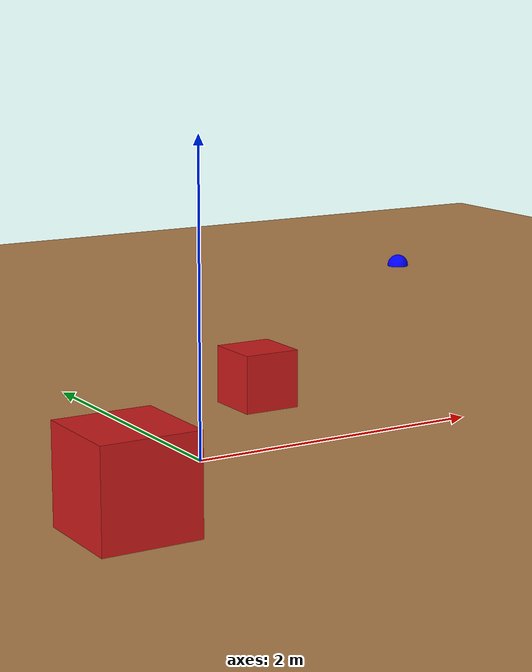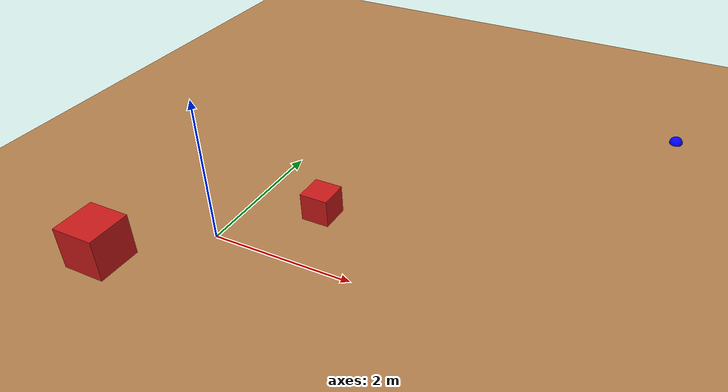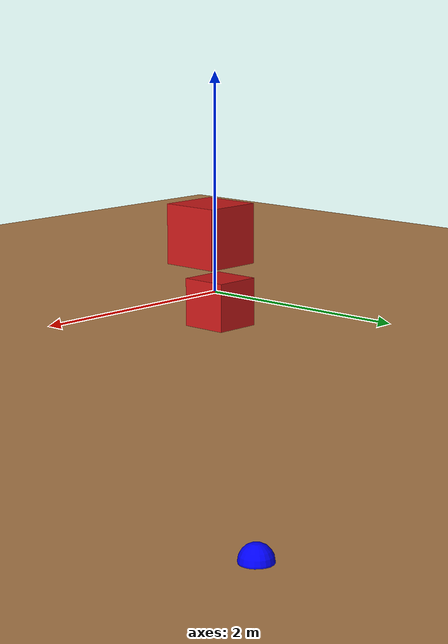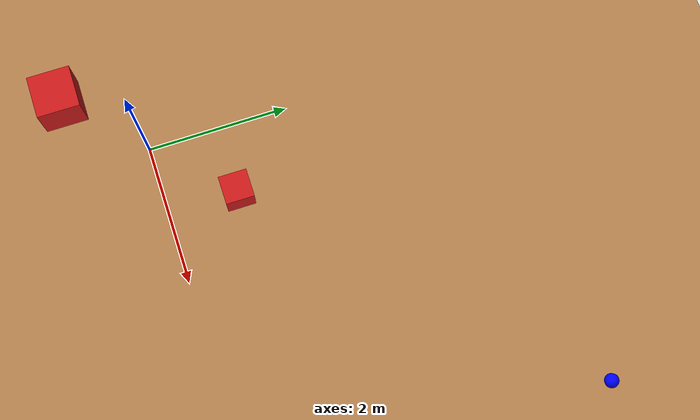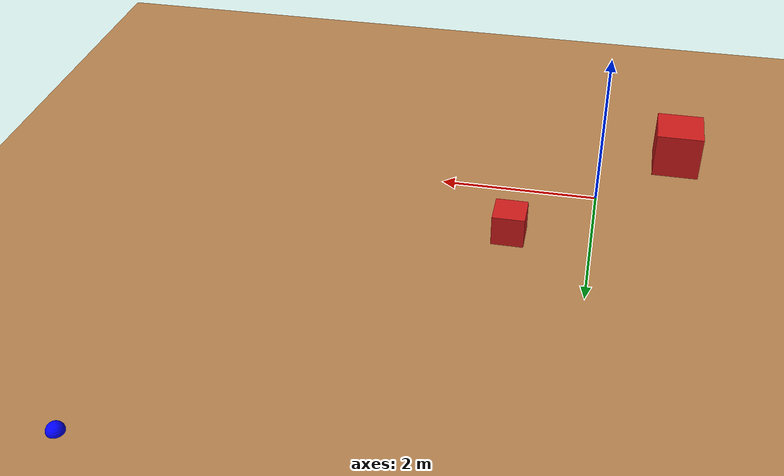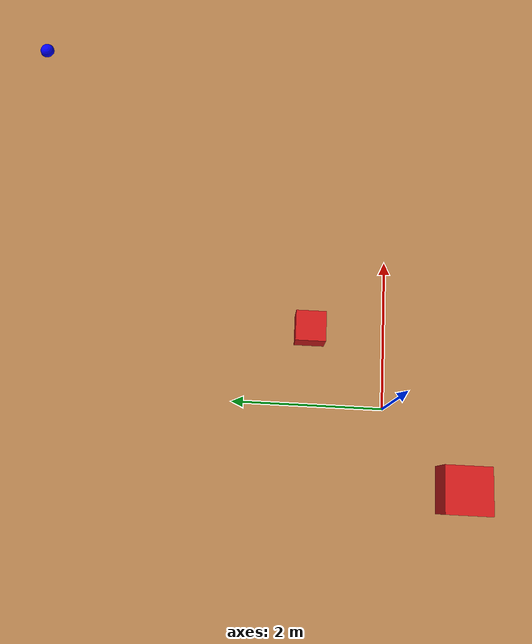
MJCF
<mujoco model="empty_arena">
  <asset>
    <texture builtin="gradient" height="256" rgb1=".9 .9 1." rgb2=".2 .3 .4" type="skybox" width="256"/>
    <texture file="../textures/light-wood.png" type="2d" name="texplane"/>
    <material name="floorplane" reflectance="0.01" shininess="0.0" specular="0.0" texrepeat="2 2" texture="texplane" texuniform="true"/>
    <material name="obstacle_material" rgba="0.8 0.1 0.1 1"/>
  </asset>
  <worldbody>
    <!-- Floor -->
    <geom condim="3" material="floorplane" name="floor" pos="0 0 0" size="10 10 .125" type="plane"/>

    <!-- Obstacle -->
    <body name="obstacle1" pos="1 1 0">
      <geom name="obstacle1_geom" type="box" size="0.2 0.2 0.2" material="obstacle_material" pos="0 0 0.2"/>
    </body>
    <body name="obstacle2" pos="-1 -1 0">
      <geom name="obstacle2_geom" type="box" size="0.3 0.3 0.3" material="obstacle_material" pos="0 0 0.3"/>
    </body>

    <!-- Target Point -->
    <body name="target" pos="5 5 0">
      <geom name="target_geom" type="sphere" size="0.1 0.1 0.1" material="obstacle_material" pos="0 0 0" rgba='0 0 1 1'/>
    </body>

    <!-- Walls (visual only) -->
    <!-- front view -->
    <camera mode="fixed" name="frontview" pos="1.6 0 1.45" quat="0.56 0.43 0.43 0.56"/>
    <!-- bird view -->
    <camera mode="fixed" name="birdview" pos="-0.2 0 3.0" quat="0.7071 0 0 0.7071"/>
    <!-- agent view -->
    <camera mode="fixed" name="agentview" pos="0.5 0 1.35" quat="0.653 0.271 0.271 0.653"/>
    <!-- side view -->
    <camera mode="fixed" name="sideview" pos="-0.05651774593317116 1.2761224129427358 1.4879572214102434" quat="0.009905065491771751 0.006877963156909582 0.5912228352893879 0.806418094001364"/>
  </worldbody>
</mujoco>
